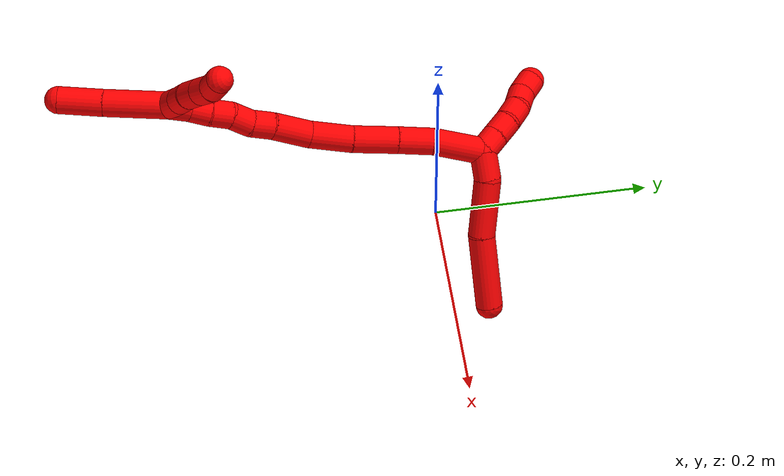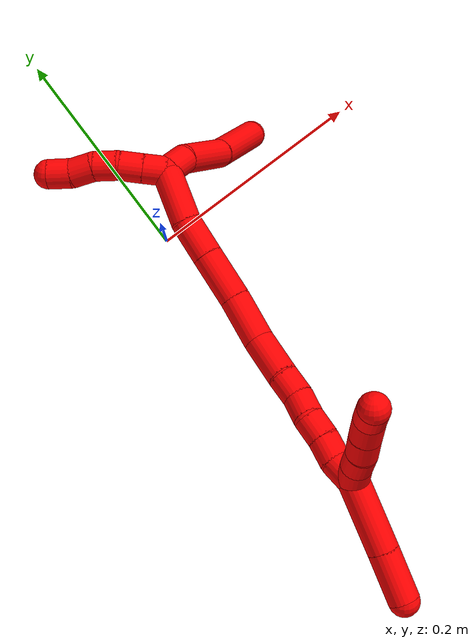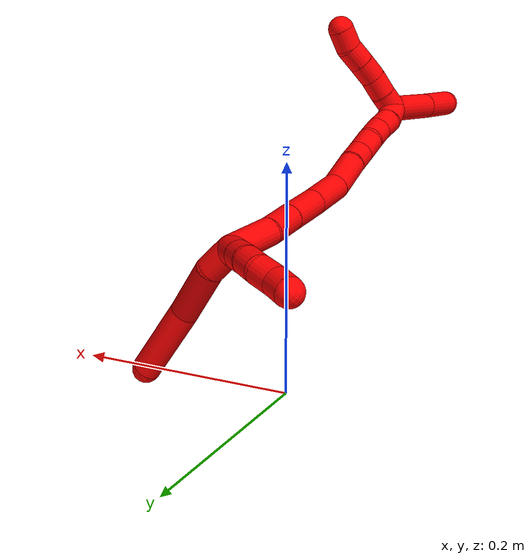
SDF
<sdf version="1.7">
 <world name="default">
  <model name="2">
   <static>0</static>
   <link name="2">
    <collision name="collision-cylinder-e_1_2_8">
     <pose>-0.001815 0.013076 0.002079 -1.41315 -0.136226 0.11633</pose>
     <geometry><cylinder><radius>0.0125</radius><length>0.026728</length></cylinder></geometry>
     <surface>
      <friction><ode><mu>1.16</mu><mu2>1.16</mu2><slip1>0</slip1><slip2>0</slip2></ode></friction>
      <contact><ode><kp>1e+06</kp><kd>1</kd><max_vel>0</max_vel><min_depth>0.001</min_depth></ode></contact>
     </surface>
    </collision>
    <visual name="visual-cylinder-e_1_2_8">
     <pose>-0.001815 0.013076 0.002079 -1.41315 -0.136226 0.11633</pose>
     <geometry><cylinder><radius>0.0125</radius><length>0.026728</length></cylinder></geometry>
     <material><ambient>1 0 0 1</ambient></material>
    </visual>
    <collision name="collision-cylinder-e_2_8_9">
     <pose>-0.008847 0.049954 0.015653 -1.12088 -0.194858 0.12252</pose>
     <geometry><cylinder><radius>0.0125</radius><length>0.053886</length></cylinder></geometry>
     <surface>
      <friction><ode><mu>1.16</mu><mu2>1.16</mu2><slip1>0</slip1><slip2>0</slip2></ode></friction>
      <contact><ode><kp>1e+06</kp><kd>1</kd><max_vel>0</max_vel><min_depth>0.001</min_depth></ode></contact>
     </surface>
    </collision>
    <visual name="visual-cylinder-e_2_8_9">
     <pose>-0.008847 0.049954 0.015653 -1.12088 -0.194858 0.12252</pose>
     <geometry><cylinder><radius>0.0125</radius><length>0.053886</length></cylinder></geometry>
     <material><ambient>1 0 0 1</ambient></material>
    </visual>
    <collision name="collision-cylinder-e_3_9_6">
     <pose>-0.015126 0.106724 0.037901 -1.25551 -0.030615 0.022218</pose>
     <geometry><cylinder><radius>0.0125</radius><length>0.069387</length></cylinder></geometry>
     <surface>
      <friction><ode><mu>1.16</mu><mu2>1.16</mu2><slip1>0</slip1><slip2>0</slip2></ode></friction>
      <contact><ode><kp>1e+06</kp><kd>1</kd><max_vel>0</max_vel><min_depth>0.001</min_depth></ode></contact>
     </surface>
    </collision>
    <visual name="visual-cylinder-e_3_9_6">
     <pose>-0.015126 0.106724 0.037901 -1.25551 -0.030615 0.022218</pose>
     <geometry><cylinder><radius>0.0125</radius><length>0.069387</length></cylinder></geometry>
     <material><ambient>1 0 0 1</ambient></material>
    </visual>
    <collision name="collision-cylinder-e_1_2_10">
     <pose>0.009153 -0.003514 -0.001969 2.08164 1.1562 1.67822</pose>
     <geometry><cylinder><radius>0.0125</radius><length>0.02</length></cylinder></geometry>
     <surface>
      <friction><ode><mu>1.16</mu><mu2>1.16</mu2><slip1>0</slip1><slip2>0</slip2></ode></friction>
      <contact><ode><kp>1e+06</kp><kd>1</kd><max_vel>0</max_vel><min_depth>0.001</min_depth></ode></contact>
     </surface>
    </collision>
    <visual name="visual-cylinder-e_1_2_10">
     <pose>0.009153 -0.003514 -0.001969 2.08164 1.1562 1.67822</pose>
     <geometry><cylinder><radius>0.0125</radius><length>0.02</length></cylinder></geometry>
     <material><ambient>1 0 0 1</ambient></material>
    </visual>
    <collision name="collision-cylinder-e_2_10_11">
     <pose>0.02743 -0.010541 -0.006039 2.1096 1.1491 1.70257</pose>
     <geometry><cylinder><radius>0.0125</radius><length>0.02</length></cylinder></geometry>
     <surface>
      <friction><ode><mu>1.16</mu><mu2>1.16</mu2><slip1>0</slip1><slip2>0</slip2></ode></friction>
      <contact><ode><kp>1e+06</kp><kd>1</kd><max_vel>0</max_vel><min_depth>0.001</min_depth></ode></contact>
     </surface>
    </collision>
    <visual name="visual-cylinder-e_2_10_11">
     <pose>0.02743 -0.010541 -0.006039 2.1096 1.1491 1.70257</pose>
     <geometry><cylinder><radius>0.0125</radius><length>0.02</length></cylinder></geometry>
     <material><ambient>1 0 0 1</ambient></material>
    </visual>
    <collision name="collision-cylinder-e_3_11_12">
     <pose>0.045985 -0.017378 -0.008142 1.57169 1.23194 1.23279</pose>
     <geometry><cylinder><radius>0.0125</radius><length>0.02</length></cylinder></geometry>
     <surface>
      <friction><ode><mu>1.16</mu><mu2>1.16</mu2><slip1>0</slip1><slip2>0</slip2></ode></friction>
      <contact><ode><kp>1e+06</kp><kd>1</kd><max_vel>0</max_vel><min_depth>0.001</min_depth></ode></contact>
     </surface>
    </collision>
    <visual name="visual-cylinder-e_3_11_12">
     <pose>0.045985 -0.017378 -0.008142 1.57169 1.23194 1.23279</pose>
     <geometry><cylinder><radius>0.0125</radius><length>0.02</length></cylinder></geometry>
     <material><ambient>1 0 0 1</ambient></material>
    </visual>
    <collision name="collision-cylinder-e_4_12_13">
     <pose>0.064313 -0.024376 -0.005435 0.93529 1.09669 0.598428</pose>
     <geometry><cylinder><radius>0.0125</radius><length>0.02</length></cylinder></geometry>
     <surface>
      <friction><ode><mu>1.16</mu><mu2>1.16</mu2><slip1>0</slip1><slip2>0</slip2></ode></friction>
      <contact><ode><kp>1e+06</kp><kd>1</kd><max_vel>0</max_vel><min_depth>0.001</min_depth></ode></contact>
     </surface>
    </collision>
    <visual name="visual-cylinder-e_4_12_13">
     <pose>0.064313 -0.024376 -0.005435 0.93529 1.09669 0.598428</pose>
     <geometry><cylinder><radius>0.0125</radius><length>0.02</length></cylinder></geometry>
     <material><ambient>1 0 0 1</ambient></material>
    </visual>
    <collision name="collision-cylinder-e_5_13_5">
     <pose>0.08269 -0.031227 -0.002525 1.50795 1.24683 1.18784</pose>
     <geometry><cylinder><radius>0.0125</radius><length>0.02</length></cylinder></geometry>
     <surface>
      <friction><ode><mu>1.16</mu><mu2>1.16</mu2><slip1>0</slip1><slip2>0</slip2></ode></friction>
      <contact><ode><kp>1e+06</kp><kd>1</kd><max_vel>0</max_vel><min_depth>0.001</min_depth></ode></contact>
     </surface>
    </collision>
    <visual name="visual-cylinder-e_5_13_5">
     <pose>0.08269 -0.031227 -0.002525 1.50795 1.24683 1.18784</pose>
     <geometry><cylinder><radius>0.0125</radius><length>0.02</length></cylinder></geometry>
     <material><ambient>1 0 0 1</ambient></material>
    </visual>
    <collision name="collision-cylinder-e_1_2_14">
     <pose>-0.012844 -0.012383 0.01459 0.703777 -0.591101 -0.222658</pose>
     <geometry><cylinder><radius>0.0125</radius><length>0.046094</length></cylinder></geometry>
     <surface>
      <friction><ode><mu>1.16</mu><mu2>1.16</mu2><slip1>0</slip1><slip2>0</slip2></ode></friction>
      <contact><ode><kp>1e+06</kp><kd>1</kd><max_vel>0</max_vel><min_depth>0.001</min_depth></ode></contact>
     </surface>
    </collision>
    <visual name="visual-cylinder-e_1_2_14">
     <pose>-0.012844 -0.012383 0.01459 0.703777 -0.591101 -0.222658</pose>
     <geometry><cylinder><radius>0.0125</radius><length>0.046094</length></cylinder></geometry>
     <material><ambient>1 0 0 1</ambient></material>
    </visual>
    <collision name="collision-cylinder-e_2_14_15">
     <pose>-0.037309 -0.031731 0.03883 0.625102 -0.773526 -0.261712</pose>
     <geometry><cylinder><radius>0.0125</radius><length>0.033268</length></cylinder></geometry>
     <surface>
      <friction><ode><mu>1.16</mu><mu2>1.16</mu2><slip1>0</slip1><slip2>0</slip2></ode></friction>
      <contact><ode><kp>1e+06</kp><kd>1</kd><max_vel>0</max_vel><min_depth>0.001</min_depth></ode></contact>
     </surface>
    </collision>
    <visual name="visual-cylinder-e_2_14_15">
     <pose>-0.037309 -0.031731 0.03883 0.625102 -0.773526 -0.261712</pose>
     <geometry><cylinder><radius>0.0125</radius><length>0.033268</length></cylinder></geometry>
     <material><ambient>1 0 0 1</ambient></material>
    </visual>
    <collision name="collision-cylinder-e_3_15_16">
     <pose>-0.063462 -0.047051 0.060809 0.595684 -0.773099 -0.248604</pose>
     <geometry><cylinder><radius>0.0125</radius><length>0.041616</length></cylinder></geometry>
     <surface>
      <friction><ode><mu>1.16</mu><mu2>1.16</mu2><slip1>0</slip1><slip2>0</slip2></ode></friction>
      <contact><ode><kp>1e+06</kp><kd>1</kd><max_vel>0</max_vel><min_depth>0.001</min_depth></ode></contact>
     </surface>
    </collision>
    <visual name="visual-cylinder-e_3_15_16">
     <pose>-0.063462 -0.047051 0.060809 0.595684 -0.773099 -0.248604</pose>
     <geometry><cylinder><radius>0.0125</radius><length>0.041616</length></cylinder></geometry>
     <material><ambient>1 0 0 1</ambient></material>
    </visual>
    <collision name="collision-cylinder-e_4_16_17">
     <pose>-0.091557 -0.065049 0.084225 0.715754 -0.745447 -0.290395</pose>
     <geometry><cylinder><radius>0.0125</radius><length>0.039994</length></cylinder></geometry>
     <surface>
      <friction><ode><mu>1.16</mu><mu2>1.16</mu2><slip1>0</slip1><slip2>0</slip2></ode></friction>
      <contact><ode><kp>1e+06</kp><kd>1</kd><max_vel>0</max_vel><min_depth>0.001</min_depth></ode></contact>
     </surface>
    </collision>
    <visual name="visual-cylinder-e_4_16_17">
     <pose>-0.091557 -0.065049 0.084225 0.715754 -0.745447 -0.290395</pose>
     <geometry><cylinder><radius>0.0125</radius><length>0.039994</length></cylinder></geometry>
     <material><ambient>1 0 0 1</ambient></material>
    </visual>
    <collision name="collision-cylinder-e_5_17_18">
     <pose>-0.119075 -0.085344 0.101214 1.06489 -0.85324 -0.52335</pose>
     <geometry><cylinder><radius>0.0125</radius><length>0.037041</length></cylinder></geometry>
     <surface>
      <friction><ode><mu>1.16</mu><mu2>1.16</mu2><slip1>0</slip1><slip2>0</slip2></ode></friction>
      <contact><ode><kp>1e+06</kp><kd>1</kd><max_vel>0</max_vel><min_depth>0.001</min_depth></ode></contact>
     </surface>
    </collision>
    <visual name="visual-cylinder-e_5_17_18">
     <pose>-0.119075 -0.085344 0.101214 1.06489 -0.85324 -0.52335</pose>
     <geometry><cylinder><radius>0.0125</radius><length>0.037041</length></cylinder></geometry>
     <material><ambient>1 0 0 1</ambient></material>
    </visual>
    <collision name="collision-cylinder-e_6_18_19">
     <pose>-0.14111 -0.101123 0.111381 0.876815 -0.880859 -0.434941</pose>
     <geometry><cylinder><radius>0.0125</radius><length>0.020955</length></cylinder></geometry>
     <surface>
      <friction><ode><mu>1.16</mu><mu2>1.16</mu2><slip1>0</slip1><slip2>0</slip2></ode></friction>
      <contact><ode><kp>1e+06</kp><kd>1</kd><max_vel>0</max_vel><min_depth>0.001</min_depth></ode></contact>
     </surface>
    </collision>
    <visual name="visual-cylinder-e_6_18_19">
     <pose>-0.14111 -0.101123 0.111381 0.876815 -0.880859 -0.434941</pose>
     <geometry><cylinder><radius>0.0125</radius><length>0.020955</length></cylinder></geometry>
     <material><ambient>1 0 0 1</ambient></material>
    </visual>
    <collision name="collision-cylinder-e_7_19_20">
     <pose>-0.156037 -0.113313 0.118402 1.19878 -0.734402 -0.513992</pose>
     <geometry><cylinder><radius>0.0125</radius><length>0.020432</length></cylinder></geometry>
     <surface>
      <friction><ode><mu>1.16</mu><mu2>1.16</mu2><slip1>0</slip1><slip2>0</slip2></ode></friction>
      <contact><ode><kp>1e+06</kp><kd>1</kd><max_vel>0</max_vel><min_depth>0.001</min_depth></ode></contact>
     </surface>
    </collision>
    <visual name="visual-cylinder-e_7_19_20">
     <pose>-0.156037 -0.113313 0.118402 1.19878 -0.734402 -0.513992</pose>
     <geometry><cylinder><radius>0.0125</radius><length>0.020432</length></cylinder></geometry>
     <material><ambient>1 0 0 1</ambient></material>
    </visual>
    <collision name="collision-cylinder-e_8_20_21">
     <pose>-0.170542 -0.125384 0.125261 0.8844 -0.869092 -0.432632</pose>
     <geometry><cylinder><radius>0.0125</radius><length>0.020057</length></cylinder></geometry>
     <surface>
      <friction><ode><mu>1.16</mu><mu2>1.16</mu2><slip1>0</slip1><slip2>0</slip2></ode></friction>
      <contact><ode><kp>1e+06</kp><kd>1</kd><max_vel>0</max_vel><min_depth>0.001</min_depth></ode></contact>
     </surface>
    </collision>
    <visual name="visual-cylinder-e_8_20_21">
     <pose>-0.170542 -0.125384 0.125261 0.8844 -0.869092 -0.432632</pose>
     <geometry><cylinder><radius>0.0125</radius><length>0.020057</length></cylinder></geometry>
     <material><ambient>1 0 0 1</ambient></material>
    </visual>
    <collision name="collision-cylinder-e_9_21_22">
     <pose>-0.18499 -0.136217 0.133897 0.909556 -0.743613 -0.376812</pose>
     <geometry><cylinder><radius>0.0125</radius><length>0.020058</length></cylinder></geometry>
     <surface>
      <friction><ode><mu>1.16</mu><mu2>1.16</mu2><slip1>0</slip1><slip2>0</slip2></ode></friction>
      <contact><ode><kp>1e+06</kp><kd>1</kd><max_vel>0</max_vel><min_depth>0.001</min_depth></ode></contact>
     </surface>
    </collision>
    <visual name="visual-cylinder-e_9_21_22">
     <pose>-0.18499 -0.136217 0.133897 0.909556 -0.743613 -0.376812</pose>
     <geometry><cylinder><radius>0.0125</radius><length>0.020058</length></cylinder></geometry>
     <material><ambient>1 0 0 1</ambient></material>
    </visual>
    <collision name="collision-cylinder-e_10_22_1">
     <pose>-0.200405 -0.146986 0.140895 1.10818 -1.0012 -0.652802</pose>
     <geometry><cylinder><radius>0.0125</radius><length>0.020485</length></cylinder></geometry>
     <surface>
      <friction><ode><mu>1.16</mu><mu2>1.16</mu2><slip1>0</slip1><slip2>0</slip2></ode></friction>
      <contact><ode><kp>1e+06</kp><kd>1</kd><max_vel>0</max_vel><min_depth>0.001</min_depth></ode></contact>
     </surface>
    </collision>
    <visual name="visual-cylinder-e_10_22_1">
     <pose>-0.200405 -0.146986 0.140895 1.10818 -1.0012 -0.652802</pose>
     <geometry><cylinder><radius>0.0125</radius><length>0.020485</length></cylinder></geometry>
     <material><ambient>1 0 0 1</ambient></material>
    </visual>
    <collision name="collision-cylinder-e_1_1_23">
     <pose>-0.210907 -0.153072 0.133604 3.02499 -0.188802 -2.03674</pose>
     <geometry><cylinder><radius>0.0125</radius><length>0.02</length></cylinder></geometry>
     <surface>
      <friction><ode><mu>1.16</mu><mu2>1.16</mu2><slip1>0</slip1><slip2>0</slip2></ode></friction>
      <contact><ode><kp>1e+06</kp><kd>1</kd><max_vel>0</max_vel><min_depth>0.001</min_depth></ode></contact>
     </surface>
    </collision>
    <visual name="visual-cylinder-e_1_1_23">
     <pose>-0.210907 -0.153072 0.133604 3.02499 -0.188802 -2.03674</pose>
     <geometry><cylinder><radius>0.0125</radius><length>0.02</length></cylinder></geometry>
     <material><ambient>1 0 0 1</ambient></material>
    </visual>
    <collision name="collision-cylinder-e_2_23_24">
     <pose>-0.21553 -0.155928 0.114387 2.96241 -0.278213 -2.00071</pose>
     <geometry><cylinder><radius>0.0125</radius><length>0.02</length></cylinder></geometry>
     <surface>
      <friction><ode><mu>1.16</mu><mu2>1.16</mu2><slip1>0</slip1><slip2>0</slip2></ode></friction>
      <contact><ode><kp>1e+06</kp><kd>1</kd><max_vel>0</max_vel><min_depth>0.001</min_depth></ode></contact>
     </surface>
    </collision>
    <visual name="visual-cylinder-e_2_23_24">
     <pose>-0.21553 -0.155928 0.114387 2.96241 -0.278213 -2.00071</pose>
     <geometry><cylinder><radius>0.0125</radius><length>0.02</length></cylinder></geometry>
     <material><ambient>1 0 0 1</ambient></material>
    </visual>
    <collision name="collision-cylinder-e_3_24_25">
     <pose>-0.219928 -0.158326 0.095087 3.07218 -0.165883 -2.35035</pose>
     <geometry><cylinder><radius>0.0125</radius><length>0.02</length></cylinder></geometry>
     <surface>
      <friction><ode><mu>1.16</mu><mu2>1.16</mu2><slip1>0</slip1><slip2>0</slip2></ode></friction>
      <contact><ode><kp>1e+06</kp><kd>1</kd><max_vel>0</max_vel><min_depth>0.001</min_depth></ode></contact>
     </surface>
    </collision>
    <visual name="visual-cylinder-e_3_24_25">
     <pose>-0.219928 -0.158326 0.095087 3.07218 -0.165883 -2.35035</pose>
     <geometry><cylinder><radius>0.0125</radius><length>0.02</length></cylinder></geometry>
     <material><ambient>1 0 0 1</ambient></material>
    </visual>
    <collision name="collision-cylinder-e_4_25_26">
     <pose>-0.223449 -0.159463 0.075435 3.09546 -0.188092 -2.66189</pose>
     <geometry><cylinder><radius>0.0125</radius><length>0.02</length></cylinder></geometry>
     <surface>
      <friction><ode><mu>1.16</mu><mu2>1.16</mu2><slip1>0</slip1><slip2>0</slip2></ode></friction>
      <contact><ode><kp>1e+06</kp><kd>1</kd><max_vel>0</max_vel><min_depth>0.001</min_depth></ode></contact>
     </surface>
    </collision>
    <visual name="visual-cylinder-e_4_25_26">
     <pose>-0.223449 -0.159463 0.075435 3.09546 -0.188092 -2.66189</pose>
     <geometry><cylinder><radius>0.0125</radius><length>0.02</length></cylinder></geometry>
     <material><ambient>1 0 0 1</ambient></material>
    </visual>
    <collision name="collision-cylinder-e_5_26_4">
     <pose>-0.227953 -0.163123 0.056523 2.80274 -0.266536 -1.32944</pose>
     <geometry><cylinder><radius>0.0125</radius><length>0.02</length></cylinder></geometry>
     <surface>
      <friction><ode><mu>1.16</mu><mu2>1.16</mu2><slip1>0</slip1><slip2>0</slip2></ode></friction>
      <contact><ode><kp>1e+06</kp><kd>1</kd><max_vel>0</max_vel><min_depth>0.001</min_depth></ode></contact>
     </surface>
    </collision>
    <visual name="visual-cylinder-e_5_26_4">
     <pose>-0.227953 -0.163123 0.056523 2.80274 -0.266536 -1.32944</pose>
     <geometry><cylinder><radius>0.0125</radius><length>0.02</length></cylinder></geometry>
     <material><ambient>1 0 0 1</ambient></material>
    </visual>
    <collision name="collision-cylinder-e_1_1_27">
     <pose>-0.224362 -0.163146 0.165543 0.468166 -0.552671 -0.135041</pose>
     <geometry><cylinder><radius>0.0125</radius><length>0.05841</length></cylinder></geometry>
     <surface>
      <friction><ode><mu>1.16</mu><mu2>1.16</mu2><slip1>0</slip1><slip2>0</slip2></ode></friction>
      <contact><ode><kp>1e+06</kp><kd>1</kd><max_vel>0</max_vel><min_depth>0.001</min_depth></ode></contact>
     </surface>
    </collision>
    <visual name="visual-cylinder-e_1_1_27">
     <pose>-0.224362 -0.163146 0.165543 0.468166 -0.552671 -0.135041</pose>
     <geometry><cylinder><radius>0.0125</radius><length>0.05841</length></cylinder></geometry>
     <material><ambient>1 0 0 1</ambient></material>
    </visual>
    <collision name="collision-cylinder-e_2_27_3">
     <pose>-0.250618 -0.182851 0.20325 0.500343 -0.553107 -0.144796</pose>
     <geometry><cylinder><radius>0.0125</radius><length>0.04159</length></cylinder></geometry>
     <surface>
      <friction><ode><mu>1.16</mu><mu2>1.16</mu2><slip1>0</slip1><slip2>0</slip2></ode></friction>
      <contact><ode><kp>1e+06</kp><kd>1</kd><max_vel>0</max_vel><min_depth>0.001</min_depth></ode></contact>
     </surface>
    </collision>
    <visual name="visual-cylinder-e_2_27_3">
     <pose>-0.250618 -0.182851 0.20325 0.500343 -0.553107 -0.144796</pose>
     <geometry><cylinder><radius>0.0125</radius><length>0.04159</length></cylinder></geometry>
     <material><ambient>1 0 0 1</ambient></material>
    </visual>
    <collision name="collision-sphere-3">
     <pose>-0.261542 -0.19134 0.218776 0 -0 0</pose>
     <geometry><sphere><radius>0.0125</radius></sphere></geometry>
     <surface>
      <friction><ode><mu>1.16</mu><mu2>1.16</mu2><slip1>0</slip1><slip2>0</slip2></ode></friction>
      <contact><ode><kp>1e+06</kp><kd>1</kd><max_vel>0</max_vel><min_depth>0.001</min_depth></ode></contact>
     </surface>
    </collision>
    <visual name="visual-sphere-3">
     <pose>-0.261542 -0.19134 0.218776 0 -0 0</pose>
     <geometry><sphere><radius>0.0125</radius></sphere></geometry>
     <material><ambient>1 0 0 1</ambient></material>
    </visual>
    <collision name="collision-sphere-27">
     <pose>-0.239694 -0.174363 0.187725 0 -0 0</pose>
     <geometry><sphere><radius>0.0125</radius></sphere></geometry>
     <surface>
      <friction><ode><mu>1.16</mu><mu2>1.16</mu2><slip1>0</slip1><slip2>0</slip2></ode></friction>
      <contact><ode><kp>1e+06</kp><kd>1</kd><max_vel>0</max_vel><min_depth>0.001</min_depth></ode></contact>
     </surface>
    </collision>
    <visual name="visual-sphere-27">
     <pose>-0.239694 -0.174363 0.187725 0 -0 0</pose>
     <geometry><sphere><radius>0.0125</radius></sphere></geometry>
     <material><ambient>1 0 0 1</ambient></material>
    </visual>
    <collision name="collision-sphere-4">
     <pose>-0.230587 -0.166329 0.047425 0 -0 0</pose>
     <geometry><sphere><radius>0.0125</radius></sphere></geometry>
     <surface>
      <friction><ode><mu>1.16</mu><mu2>1.16</mu2><slip1>0</slip1><slip2>0</slip2></ode></friction>
      <contact><ode><kp>1e+06</kp><kd>1</kd><max_vel>0</max_vel><min_depth>0.001</min_depth></ode></contact>
     </surface>
    </collision>
    <visual name="visual-sphere-4">
     <pose>-0.230587 -0.166329 0.047425 0 -0 0</pose>
     <geometry><sphere><radius>0.0125</radius></sphere></geometry>
     <material><ambient>1 0 0 1</ambient></material>
    </visual>
    <collision name="collision-sphere-26">
     <pose>-0.225319 -0.159916 0.065621 0 -0 0</pose>
     <geometry><sphere><radius>0.0125</radius></sphere></geometry>
     <surface>
      <friction><ode><mu>1.16</mu><mu2>1.16</mu2><slip1>0</slip1><slip2>0</slip2></ode></friction>
      <contact><ode><kp>1e+06</kp><kd>1</kd><max_vel>0</max_vel><min_depth>0.001</min_depth></ode></contact>
     </surface>
    </collision>
    <visual name="visual-sphere-26">
     <pose>-0.225319 -0.159916 0.065621 0 -0 0</pose>
     <geometry><sphere><radius>0.0125</radius></sphere></geometry>
     <material><ambient>1 0 0 1</ambient></material>
    </visual>
    <collision name="collision-sphere-25">
     <pose>-0.221579 -0.15901 0.085248 0 -0 0</pose>
     <geometry><sphere><radius>0.0125</radius></sphere></geometry>
     <surface>
      <friction><ode><mu>1.16</mu><mu2>1.16</mu2><slip1>0</slip1><slip2>0</slip2></ode></friction>
      <contact><ode><kp>1e+06</kp><kd>1</kd><max_vel>0</max_vel><min_depth>0.001</min_depth></ode></contact>
     </surface>
    </collision>
    <visual name="visual-sphere-25">
     <pose>-0.221579 -0.15901 0.085248 0 -0 0</pose>
     <geometry><sphere><radius>0.0125</radius></sphere></geometry>
     <material><ambient>1 0 0 1</ambient></material>
    </visual>
    <collision name="collision-sphere-24">
     <pose>-0.218277 -0.157642 0.104926 0 -0 0</pose>
     <geometry><sphere><radius>0.0125</radius></sphere></geometry>
     <surface>
      <friction><ode><mu>1.16</mu><mu2>1.16</mu2><slip1>0</slip1><slip2>0</slip2></ode></friction>
      <contact><ode><kp>1e+06</kp><kd>1</kd><max_vel>0</max_vel><min_depth>0.001</min_depth></ode></contact>
     </surface>
    </collision>
    <visual name="visual-sphere-24">
     <pose>-0.218277 -0.157642 0.104926 0 -0 0</pose>
     <geometry><sphere><radius>0.0125</radius></sphere></geometry>
     <material><ambient>1 0 0 1</ambient></material>
    </visual>
    <collision name="collision-sphere-23">
     <pose>-0.212784 -0.154215 0.123849 0 -0 0</pose>
     <geometry><sphere><radius>0.0125</radius></sphere></geometry>
     <surface>
      <friction><ode><mu>1.16</mu><mu2>1.16</mu2><slip1>0</slip1><slip2>0</slip2></ode></friction>
      <contact><ode><kp>1e+06</kp><kd>1</kd><max_vel>0</max_vel><min_depth>0.001</min_depth></ode></contact>
     </surface>
    </collision>
    <visual name="visual-sphere-23">
     <pose>-0.212784 -0.154215 0.123849 0 -0 0</pose>
     <geometry><sphere><radius>0.0125</radius></sphere></geometry>
     <material><ambient>1 0 0 1</ambient></material>
    </visual>
    <collision name="collision-sphere-1">
     <pose>-0.20903 -0.151929 0.14336 0 -0 0</pose>
     <geometry><sphere><radius>0.0125</radius></sphere></geometry>
     <surface>
      <friction><ode><mu>1.16</mu><mu2>1.16</mu2><slip1>0</slip1><slip2>0</slip2></ode></friction>
      <contact><ode><kp>1e+06</kp><kd>1</kd><max_vel>0</max_vel><min_depth>0.001</min_depth></ode></contact>
     </surface>
    </collision>
    <visual name="visual-sphere-1">
     <pose>-0.20903 -0.151929 0.14336 0 -0 0</pose>
     <geometry><sphere><radius>0.0125</radius></sphere></geometry>
     <material><ambient>1 0 0 1</ambient></material>
    </visual>
    <collision name="collision-sphere-22">
     <pose>-0.191779 -0.142043 0.13843 0 -0 0</pose>
     <geometry><sphere><radius>0.0125</radius></sphere></geometry>
     <surface>
      <friction><ode><mu>1.16</mu><mu2>1.16</mu2><slip1>0</slip1><slip2>0</slip2></ode></friction>
      <contact><ode><kp>1e+06</kp><kd>1</kd><max_vel>0</max_vel><min_depth>0.001</min_depth></ode></contact>
     </surface>
    </collision>
    <visual name="visual-sphere-22">
     <pose>-0.191779 -0.142043 0.13843 0 -0 0</pose>
     <geometry><sphere><radius>0.0125</radius></sphere></geometry>
     <material><ambient>1 0 0 1</ambient></material>
    </visual>
    <collision name="collision-sphere-21">
     <pose>-0.178201 -0.130392 0.129364 0 -0 0</pose>
     <geometry><sphere><radius>0.0125</radius></sphere></geometry>
     <surface>
      <friction><ode><mu>1.16</mu><mu2>1.16</mu2><slip1>0</slip1><slip2>0</slip2></ode></friction>
      <contact><ode><kp>1e+06</kp><kd>1</kd><max_vel>0</max_vel><min_depth>0.001</min_depth></ode></contact>
     </surface>
    </collision>
    <visual name="visual-sphere-21">
     <pose>-0.178201 -0.130392 0.129364 0 -0 0</pose>
     <geometry><sphere><radius>0.0125</radius></sphere></geometry>
     <material><ambient>1 0 0 1</ambient></material>
    </visual>
    <collision name="collision-sphere-11">
     <pose>0.036554 -0.014054 -0.008139 0 -0 0</pose>
     <geometry><sphere><radius>0.0125</radius></sphere></geometry>
     <surface>
      <friction><ode><mu>1.16</mu><mu2>1.16</mu2><slip1>0</slip1><slip2>0</slip2></ode></friction>
      <contact><ode><kp>1e+06</kp><kd>1</kd><max_vel>0</max_vel><min_depth>0.001</min_depth></ode></contact>
     </surface>
    </collision>
    <visual name="visual-sphere-11">
     <pose>0.036554 -0.014054 -0.008139 0 -0 0</pose>
     <geometry><sphere><radius>0.0125</radius></sphere></geometry>
     <material><ambient>1 0 0 1</ambient></material>
    </visual>
    <collision name="collision-sphere-10">
     <pose>0.018306 -0.007028 -0.003939 0 -0 0</pose>
     <geometry><sphere><radius>0.0125</radius></sphere></geometry>
     <surface>
      <friction><ode><mu>1.16</mu><mu2>1.16</mu2><slip1>0</slip1><slip2>0</slip2></ode></friction>
      <contact><ode><kp>1e+06</kp><kd>1</kd><max_vel>0</max_vel><min_depth>0.001</min_depth></ode></contact>
     </surface>
    </collision>
    <visual name="visual-sphere-10">
     <pose>0.018306 -0.007028 -0.003939 0 -0 0</pose>
     <geometry><sphere><radius>0.0125</radius></sphere></geometry>
     <material><ambient>1 0 0 1</ambient></material>
    </visual>
    <collision name="collision-sphere-6">
     <pose>-0.016188 0.139692 0.048654 0 -0 0</pose>
     <geometry><sphere><radius>0.0125</radius></sphere></geometry>
     <surface>
      <friction><ode><mu>1.16</mu><mu2>1.16</mu2><slip1>0</slip1><slip2>0</slip2></ode></friction>
      <contact><ode><kp>1e+06</kp><kd>1</kd><max_vel>0</max_vel><min_depth>0.001</min_depth></ode></contact>
     </surface>
    </collision>
    <visual name="visual-sphere-6">
     <pose>-0.016188 0.139692 0.048654 0 -0 0</pose>
     <geometry><sphere><radius>0.0125</radius></sphere></geometry>
     <material><ambient>1 0 0 1</ambient></material>
    </visual>
    <collision name="collision-sphere-9">
     <pose>-0.014064 0.073757 0.027148 0 -0 0</pose>
     <geometry><sphere><radius>0.0125</radius></sphere></geometry>
     <surface>
      <friction><ode><mu>1.16</mu><mu2>1.16</mu2><slip1>0</slip1><slip2>0</slip2></ode></friction>
      <contact><ode><kp>1e+06</kp><kd>1</kd><max_vel>0</max_vel><min_depth>0.001</min_depth></ode></contact>
     </surface>
    </collision>
    <visual name="visual-sphere-9">
     <pose>-0.014064 0.073757 0.027148 0 -0 0</pose>
     <geometry><sphere><radius>0.0125</radius></sphere></geometry>
     <material><ambient>1 0 0 1</ambient></material>
    </visual>
    <collision name="collision-sphere-2">
     <geometry><sphere><radius>0.0125</radius></sphere></geometry>
     <surface>
      <friction><ode><mu>1.16</mu><mu2>1.16</mu2><slip1>0</slip1><slip2>0</slip2></ode></friction>
      <contact><ode><kp>1e+06</kp><kd>1</kd><max_vel>0</max_vel><min_depth>0.001</min_depth></ode></contact>
     </surface>
    </collision>
    <visual name="visual-sphere-2">
     <geometry><sphere><radius>0.0125</radius></sphere></geometry>
     <material><ambient>1 0 0 1</ambient></material>
    </visual>
    <collision name="collision-sphere-19">
     <pose>-0.149191 -0.106249 0.115646 0 -0 0</pose>
     <geometry><sphere><radius>0.0125</radius></sphere></geometry>
     <surface>
      <friction><ode><mu>1.16</mu><mu2>1.16</mu2><slip1>0</slip1><slip2>0</slip2></ode></friction>
      <contact><ode><kp>1e+06</kp><kd>1</kd><max_vel>0</max_vel><min_depth>0.001</min_depth></ode></contact>
     </surface>
    </collision>
    <visual name="visual-sphere-19">
     <pose>-0.149191 -0.106249 0.115646 0 -0 0</pose>
     <geometry><sphere><radius>0.0125</radius></sphere></geometry>
     <material><ambient>1 0 0 1</ambient></material>
    </visual>
    <collision name="collision-sphere-8">
     <pose>-0.00363 0.026152 0.004157 0 -0 0</pose>
     <geometry><sphere><radius>0.0125</radius></sphere></geometry>
     <surface>
      <friction><ode><mu>1.16</mu><mu2>1.16</mu2><slip1>0</slip1><slip2>0</slip2></ode></friction>
      <contact><ode><kp>1e+06</kp><kd>1</kd><max_vel>0</max_vel><min_depth>0.001</min_depth></ode></contact>
     </surface>
    </collision>
    <visual name="visual-sphere-8">
     <pose>-0.00363 0.026152 0.004157 0 -0 0</pose>
     <geometry><sphere><radius>0.0125</radius></sphere></geometry>
     <material><ambient>1 0 0 1</ambient></material>
    </visual>
    <collision name="collision-sphere-12">
     <pose>0.055416 -0.020702 -0.008145 0 -0 0</pose>
     <geometry><sphere><radius>0.0125</radius></sphere></geometry>
     <surface>
      <friction><ode><mu>1.16</mu><mu2>1.16</mu2><slip1>0</slip1><slip2>0</slip2></ode></friction>
      <contact><ode><kp>1e+06</kp><kd>1</kd><max_vel>0</max_vel><min_depth>0.001</min_depth></ode></contact>
     </surface>
    </collision>
    <visual name="visual-sphere-12">
     <pose>0.055416 -0.020702 -0.008145 0 -0 0</pose>
     <geometry><sphere><radius>0.0125</radius></sphere></geometry>
     <material><ambient>1 0 0 1</ambient></material>
    </visual>
    <collision name="collision-sphere-13">
     <pose>0.07321 -0.02805 -0.002725 0 -0 0</pose>
     <geometry><sphere><radius>0.0125</radius></sphere></geometry>
     <surface>
      <friction><ode><mu>1.16</mu><mu2>1.16</mu2><slip1>0</slip1><slip2>0</slip2></ode></friction>
      <contact><ode><kp>1e+06</kp><kd>1</kd><max_vel>0</max_vel><min_depth>0.001</min_depth></ode></contact>
     </surface>
    </collision>
    <visual name="visual-sphere-13">
     <pose>0.07321 -0.02805 -0.002725 0 -0 0</pose>
     <geometry><sphere><radius>0.0125</radius></sphere></geometry>
     <material><ambient>1 0 0 1</ambient></material>
    </visual>
    <collision name="collision-sphere-5">
     <pose>0.09217 -0.034404 -0.002325 0 -0 0</pose>
     <geometry><sphere><radius>0.0125</radius></sphere></geometry>
     <surface>
      <friction><ode><mu>1.16</mu><mu2>1.16</mu2><slip1>0</slip1><slip2>0</slip2></ode></friction>
      <contact><ode><kp>1e+06</kp><kd>1</kd><max_vel>0</max_vel><min_depth>0.001</min_depth></ode></contact>
     </surface>
    </collision>
    <visual name="visual-sphere-5">
     <pose>0.09217 -0.034404 -0.002325 0 -0 0</pose>
     <geometry><sphere><radius>0.0125</radius></sphere></geometry>
     <material><ambient>1 0 0 1</ambient></material>
    </visual>
    <collision name="collision-sphere-14">
     <pose>-0.025687 -0.024767 0.02918 0 -0 0</pose>
     <geometry><sphere><radius>0.0125</radius></sphere></geometry>
     <surface>
      <friction><ode><mu>1.16</mu><mu2>1.16</mu2><slip1>0</slip1><slip2>0</slip2></ode></friction>
      <contact><ode><kp>1e+06</kp><kd>1</kd><max_vel>0</max_vel><min_depth>0.001</min_depth></ode></contact>
     </surface>
    </collision>
    <visual name="visual-sphere-14">
     <pose>-0.025687 -0.024767 0.02918 0 -0 0</pose>
     <geometry><sphere><radius>0.0125</radius></sphere></geometry>
     <material><ambient>1 0 0 1</ambient></material>
    </visual>
    <collision name="collision-sphere-15">
     <pose>-0.04893 -0.038695 0.04848 0 -0 0</pose>
     <geometry><sphere><radius>0.0125</radius></sphere></geometry>
     <surface>
      <friction><ode><mu>1.16</mu><mu2>1.16</mu2><slip1>0</slip1><slip2>0</slip2></ode></friction>
      <contact><ode><kp>1e+06</kp><kd>1</kd><max_vel>0</max_vel><min_depth>0.001</min_depth></ode></contact>
     </surface>
    </collision>
    <visual name="visual-sphere-15">
     <pose>-0.04893 -0.038695 0.04848 0 -0 0</pose>
     <geometry><sphere><radius>0.0125</radius></sphere></geometry>
     <material><ambient>1 0 0 1</ambient></material>
    </visual>
    <collision name="collision-sphere-16">
     <pose>-0.077993 -0.055407 0.073137 0 -0 0</pose>
     <geometry><sphere><radius>0.0125</radius></sphere></geometry>
     <surface>
      <friction><ode><mu>1.16</mu><mu2>1.16</mu2><slip1>0</slip1><slip2>0</slip2></ode></friction>
      <contact><ode><kp>1e+06</kp><kd>1</kd><max_vel>0</max_vel><min_depth>0.001</min_depth></ode></contact>
     </surface>
    </collision>
    <visual name="visual-sphere-16">
     <pose>-0.077993 -0.055407 0.073137 0 -0 0</pose>
     <geometry><sphere><radius>0.0125</radius></sphere></geometry>
     <material><ambient>1 0 0 1</ambient></material>
    </visual>
    <collision name="collision-sphere-17">
     <pose>-0.105121 -0.074691 0.095312 0 -0 0</pose>
     <geometry><sphere><radius>0.0125</radius></sphere></geometry>
     <surface>
      <friction><ode><mu>1.16</mu><mu2>1.16</mu2><slip1>0</slip1><slip2>0</slip2></ode></friction>
      <contact><ode><kp>1e+06</kp><kd>1</kd><max_vel>0</max_vel><min_depth>0.001</min_depth></ode></contact>
     </surface>
    </collision>
    <visual name="visual-sphere-17">
     <pose>-0.105121 -0.074691 0.095312 0 -0 0</pose>
     <geometry><sphere><radius>0.0125</radius></sphere></geometry>
     <material><ambient>1 0 0 1</ambient></material>
    </visual>
    <collision name="collision-sphere-18">
     <pose>-0.133029 -0.095996 0.107115 0 -0 0</pose>
     <geometry><sphere><radius>0.0125</radius></sphere></geometry>
     <surface>
      <friction><ode><mu>1.16</mu><mu2>1.16</mu2><slip1>0</slip1><slip2>0</slip2></ode></friction>
      <contact><ode><kp>1e+06</kp><kd>1</kd><max_vel>0</max_vel><min_depth>0.001</min_depth></ode></contact>
     </surface>
    </collision>
    <visual name="visual-sphere-18">
     <pose>-0.133029 -0.095996 0.107115 0 -0 0</pose>
     <geometry><sphere><radius>0.0125</radius></sphere></geometry>
     <material><ambient>1 0 0 1</ambient></material>
    </visual>
    <collision name="collision-sphere-20">
     <pose>-0.162883 -0.120377 0.121159 0 -0 0</pose>
     <geometry><sphere><radius>0.0125</radius></sphere></geometry>
     <surface>
      <friction><ode><mu>1.16</mu><mu2>1.16</mu2><slip1>0</slip1><slip2>0</slip2></ode></friction>
      <contact><ode><kp>1e+06</kp><kd>1</kd><max_vel>0</max_vel><min_depth>0.001</min_depth></ode></contact>
     </surface>
    </collision>
    <visual name="visual-sphere-20">
     <pose>-0.162883 -0.120377 0.121159 0 -0 0</pose>
     <geometry><sphere><radius>0.0125</radius></sphere></geometry>
     <material><ambient>1 0 0 1</ambient></material>
    </visual>
    <inertial>
     <pose>-0.096527 -0.061688 0.073493 0 -0 0</pose>
     <mass>0.75</mass>
     <inertia><ixx>6.7e-05</ixx><ixy>0</ixy><ixz>0</ixz><iyy>6.5e-05</iyy><iyz>0</iyz><izz>4.5e-05</izz></inertia>
    </inertial>
   </link>
   <pose>0.03164 0.037172 0.132125 -2.34586 0.359717 2.28093</pose>
  </model>
 </world>
</sdf>
